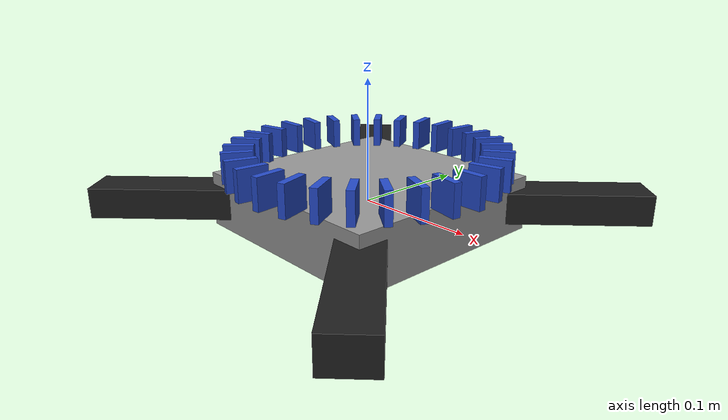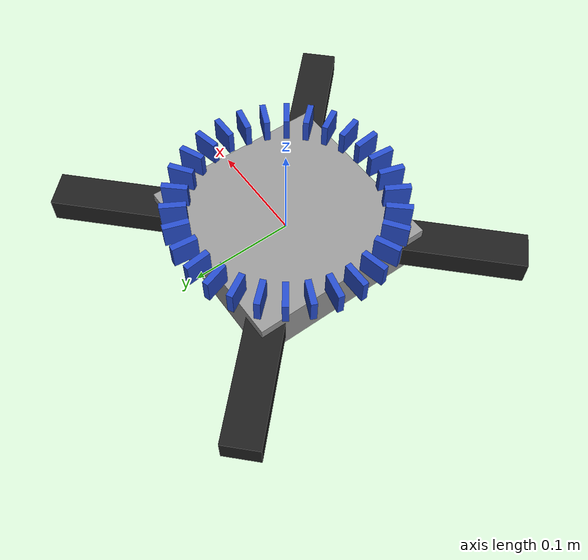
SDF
<?xml version="1.0" ?>

<sdf version="1.5">
  <model name="pendulum_quadcopter_platform">
    <link name="platform_base">
      <pose>0 0 0 0 0 0</pose>
      <inertial>
        <pose>0 0 0 0 0 0</pose>
        <mass>1.1</mass>
        <inertia>
          <ixx>0.018</ixx>
          <iyy>0.018</iyy>
          <izz>0.032</izz>
          <ixy>0</ixy>
          <ixz>0</ixz>
          <iyz>0</iyz>
        </inertia>
      </inertial>

      <collision name="body_collision">
        <pose>0 0 0 0 0 0</pose>
        <geometry>
          <box>
            <size>0.18 0.18 0.045</size>
          </box>
        </geometry>
        <surface>
          <contact>
            <ode>
              <max_vel>100.0</max_vel>
              <min_depth>0.001</min_depth>
            </ode>
          </contact>
          <friction>
            <ode>
              <mu>100000.0</mu>
              <mu2>100000.0</mu2>
            </ode>
          </friction>
        </surface>
      </collision>
      <visual name="body_visual">
        <pose>0 0 0 0 0 0</pose>
        <geometry>
          <box>
            <size>0.18 0.18 0.045</size>
          </box>
        </geometry>
        <material>
          <script>
            <name>Gazebo/Grey</name>
          </script>
        </material>
      </visual>

      <collision name="arm_positive_collision">
        <pose>0 0 0 0 0 0.7853981633974483</pose>
        <geometry>
          <box>
            <size>0.45 0.035 0.025</size>
          </box>
        </geometry>
      </collision>
      <visual name="arm_positive_visual">
        <pose>0 0 0 0 0 0.7853981633974483</pose>
        <geometry>
          <box>
            <size>0.45 0.035 0.025</size>
          </box>
        </geometry>
        <material>
          <script>
            <name>Gazebo/Black</name>
          </script>
        </material>
      </visual>

      <collision name="arm_negative_collision">
        <pose>0 0 0 0 0 -0.7853981633974483</pose>
        <geometry>
          <box>
            <size>0.45 0.035 0.025</size>
          </box>
        </geometry>
      </collision>
      <visual name="arm_negative_visual">
        <pose>0 0 0 0 0 -0.7853981633974483</pose>
        <geometry>
          <box>
            <size>0.45 0.035 0.025</size>
          </box>
        </geometry>
        <material>
          <script>
            <name>Gazebo/Black</name>
          </script>
        </material>
      </visual>

      <collision name="pendulum_cup_collision_0">
        <pose>0.10300000000000001 0.0 0.035 0 0 0.0</pose>
        <geometry>
          <box>
            <size>0.0248081099878474 0.006 0.025</size>
          </box>
        </geometry>
        <surface>
          <contact>
            <ode>
              <max_vel>100.0</max_vel>
              <min_depth>0.001</min_depth>
            </ode>
          </contact>
          <friction>
            <ode>
              <mu>100000.0</mu>
              <mu2>100000.0</mu2>
            </ode>
          </friction>
        </surface>
      </collision>
      <visual name="pendulum_cup_visual_0">
        <pose>0.10300000000000001 0.0 0.035 0 0 0.0</pose>
        <geometry>
          <box>
            <size>0.0248081099878474 0.006 0.025</size>
          </box>
        </geometry>
        <material>
          <script>
            <name>Gazebo/Blue</name>
          </script>
        </material>
      </visual>

      <collision name="pendulum_cup_collision_1">
        <pose>0.10074920287558199 0.02141490415422921 0.035 0 0 0.20943951023931953</pose>
        <geometry>
          <box>
            <size>0.0248081099878474 0.006 0.025</size>
          </box>
        </geometry>
        <surface>
          <contact>
            <ode>
              <max_vel>100.0</max_vel>
              <min_depth>0.001</min_depth>
            </ode>
          </contact>
          <friction>
            <ode>
              <mu>100000.0</mu>
              <mu2>100000.0</mu2>
            </ode>
          </friction>
        </surface>
      </collision>
      <visual name="pendulum_cup_visual_1">
        <pose>0.10074920287558199 0.02141490415422921 0.035 0 0 0.20943951023931953</pose>
        <geometry>
          <box>
            <size>0.0248081099878474 0.006 0.025</size>
          </box>
        </geometry>
        <material>
          <script>
            <name>Gazebo/Blue</name>
          </script>
        </material>
      </visual>

      <collision name="pendulum_cup_collision_2">
        <pose>0.0940951821371879 0.04189387423680742 0.035 0 0 0.41887902047863906</pose>
        <geometry>
          <box>
            <size>0.0248081099878474 0.006 0.025</size>
          </box>
        </geometry>
        <surface>
          <contact>
            <ode>
              <max_vel>100.0</max_vel>
              <min_depth>0.001</min_depth>
            </ode>
          </contact>
          <friction>
            <ode>
              <mu>100000.0</mu>
              <mu2>100000.0</mu2>
            </ode>
          </friction>
        </surface>
      </collision>
      <visual name="pendulum_cup_visual_2">
        <pose>0.0940951821371879 0.04189387423680742 0.035 0 0 0.41887902047863906</pose>
        <geometry>
          <box>
            <size>0.0248081099878474 0.006 0.025</size>
          </box>
        </geometry>
        <material>
          <script>
            <name>Gazebo/Blue</name>
          </script>
        </material>
      </visual>

      <collision name="pendulum_cup_collision_3">
        <pose>0.08332875042061959 0.06054188098612474 0.035 0 0 0.6283185307179586</pose>
        <geometry>
          <box>
            <size>0.0248081099878474 0.006 0.025</size>
          </box>
        </geometry>
        <surface>
          <contact>
            <ode>
              <max_vel>100.0</max_vel>
              <min_depth>0.001</min_depth>
            </ode>
          </contact>
          <friction>
            <ode>
              <mu>100000.0</mu>
              <mu2>100000.0</mu2>
            </ode>
          </friction>
        </surface>
      </collision>
      <visual name="pendulum_cup_visual_3">
        <pose>0.08332875042061959 0.06054188098612474 0.035 0 0 0.6283185307179586</pose>
        <geometry>
          <box>
            <size>0.0248081099878474 0.006 0.025</size>
          </box>
        </geometry>
        <material>
          <script>
            <name>Gazebo/Blue</name>
          </script>
        </material>
      </visual>

      <collision name="pendulum_cup_collision_4">
        <pose>0.06892045245496241 0.0765439170241716 0.035 0 0 0.8377580409572781</pose>
        <geometry>
          <box>
            <size>0.0248081099878474 0.006 0.025</size>
          </box>
        </geometry>
        <surface>
          <contact>
            <ode>
              <max_vel>100.0</max_vel>
              <min_depth>0.001</min_depth>
            </ode>
          </contact>
          <friction>
            <ode>
              <mu>100000.0</mu>
              <mu2>100000.0</mu2>
            </ode>
          </friction>
        </surface>
      </collision>
      <visual name="pendulum_cup_visual_4">
        <pose>0.06892045245496241 0.0765439170241716 0.035 0 0 0.8377580409572781</pose>
        <geometry>
          <box>
            <size>0.0248081099878474 0.006 0.025</size>
          </box>
        </geometry>
        <material>
          <script>
            <name>Gazebo/Blue</name>
          </script>
        </material>
      </visual>

      <collision name="pendulum_cup_collision_5">
        <pose>0.05150000000000002 0.08920061658979718 0.035 0 0 1.0471975511965976</pose>
        <geometry>
          <box>
            <size>0.0248081099878474 0.006 0.025</size>
          </box>
        </geometry>
        <surface>
          <contact>
            <ode>
              <max_vel>100.0</max_vel>
              <min_depth>0.001</min_depth>
            </ode>
          </contact>
          <friction>
            <ode>
              <mu>100000.0</mu>
              <mu2>100000.0</mu2>
            </ode>
          </friction>
        </surface>
      </collision>
      <visual name="pendulum_cup_visual_5">
        <pose>0.05150000000000002 0.08920061658979718 0.035 0 0 1.0471975511965976</pose>
        <geometry>
          <box>
            <size>0.0248081099878474 0.006 0.025</size>
          </box>
        </geometry>
        <material>
          <script>
            <name>Gazebo/Blue</name>
          </script>
        </material>
      </visual>

      <collision name="pendulum_cup_collision_6">
        <pose>0.03182875042061959 0.09795882117840082 0.035 0 0 1.2566370614359172</pose>
        <geometry>
          <box>
            <size>0.0248081099878474 0.006 0.025</size>
          </box>
        </geometry>
        <surface>
          <contact>
            <ode>
              <max_vel>100.0</max_vel>
              <min_depth>0.001</min_depth>
            </ode>
          </contact>
          <friction>
            <ode>
              <mu>100000.0</mu>
              <mu2>100000.0</mu2>
            </ode>
          </friction>
        </surface>
      </collision>
      <visual name="pendulum_cup_visual_6">
        <pose>0.03182875042061959 0.09795882117840082 0.035 0 0 1.2566370614359172</pose>
        <geometry>
          <box>
            <size>0.0248081099878474 0.006 0.025</size>
          </box>
        </geometry>
        <material>
          <script>
            <name>Gazebo/Blue</name>
          </script>
        </material>
      </visual>

      <collision name="pendulum_cup_collision_7">
        <pose>0.010766431716568306 0.10243575522293216 0.035 0 0 1.4660765716752369</pose>
        <geometry>
          <box>
            <size>0.0248081099878474 0.006 0.025</size>
          </box>
        </geometry>
        <surface>
          <contact>
            <ode>
              <max_vel>100.0</max_vel>
              <min_depth>0.001</min_depth>
            </ode>
          </contact>
          <friction>
            <ode>
              <mu>100000.0</mu>
              <mu2>100000.0</mu2>
            </ode>
          </friction>
        </surface>
      </collision>
      <visual name="pendulum_cup_visual_7">
        <pose>0.010766431716568306 0.10243575522293216 0.035 0 0 1.4660765716752369</pose>
        <geometry>
          <box>
            <size>0.0248081099878474 0.006 0.025</size>
          </box>
        </geometry>
        <material>
          <script>
            <name>Gazebo/Blue</name>
          </script>
        </material>
      </visual>

      <collision name="pendulum_cup_collision_8">
        <pose>-0.010766431716568294 0.10243575522293216 0.035 0 0 1.6755160819145563</pose>
        <geometry>
          <box>
            <size>0.0248081099878474 0.006 0.025</size>
          </box>
        </geometry>
        <surface>
          <contact>
            <ode>
              <max_vel>100.0</max_vel>
              <min_depth>0.001</min_depth>
            </ode>
          </contact>
          <friction>
            <ode>
              <mu>100000.0</mu>
              <mu2>100000.0</mu2>
            </ode>
          </friction>
        </surface>
      </collision>
      <visual name="pendulum_cup_visual_8">
        <pose>-0.010766431716568294 0.10243575522293216 0.035 0 0 1.6755160819145563</pose>
        <geometry>
          <box>
            <size>0.0248081099878474 0.006 0.025</size>
          </box>
        </geometry>
        <material>
          <script>
            <name>Gazebo/Blue</name>
          </script>
        </material>
      </visual>

      <collision name="pendulum_cup_collision_9">
        <pose>-0.03182875042061958 0.09795882117840084 0.035 0 0 1.8849555921538759</pose>
        <geometry>
          <box>
            <size>0.0248081099878474 0.006 0.025</size>
          </box>
        </geometry>
        <surface>
          <contact>
            <ode>
              <max_vel>100.0</max_vel>
              <min_depth>0.001</min_depth>
            </ode>
          </contact>
          <friction>
            <ode>
              <mu>100000.0</mu>
              <mu2>100000.0</mu2>
            </ode>
          </friction>
        </surface>
      </collision>
      <visual name="pendulum_cup_visual_9">
        <pose>-0.03182875042061958 0.09795882117840084 0.035 0 0 1.8849555921538759</pose>
        <geometry>
          <box>
            <size>0.0248081099878474 0.006 0.025</size>
          </box>
        </geometry>
        <material>
          <script>
            <name>Gazebo/Blue</name>
          </script>
        </material>
      </visual>

      <collision name="pendulum_cup_collision_10">
        <pose>-0.05149999999999998 0.0892006165897972 0.035 0 0 2.0943951023931953</pose>
        <geometry>
          <box>
            <size>0.0248081099878474 0.006 0.025</size>
          </box>
        </geometry>
        <surface>
          <contact>
            <ode>
              <max_vel>100.0</max_vel>
              <min_depth>0.001</min_depth>
            </ode>
          </contact>
          <friction>
            <ode>
              <mu>100000.0</mu>
              <mu2>100000.0</mu2>
            </ode>
          </friction>
        </surface>
      </collision>
      <visual name="pendulum_cup_visual_10">
        <pose>-0.05149999999999998 0.0892006165897972 0.035 0 0 2.0943951023931953</pose>
        <geometry>
          <box>
            <size>0.0248081099878474 0.006 0.025</size>
          </box>
        </geometry>
        <material>
          <script>
            <name>Gazebo/Blue</name>
          </script>
        </material>
      </visual>

      <collision name="pendulum_cup_collision_11">
        <pose>-0.06892045245496237 0.07654391702417164 0.035 0 0 2.3038346126325147</pose>
        <geometry>
          <box>
            <size>0.0248081099878474 0.006 0.025</size>
          </box>
        </geometry>
        <surface>
          <contact>
            <ode>
              <max_vel>100.0</max_vel>
              <min_depth>0.001</min_depth>
            </ode>
          </contact>
          <friction>
            <ode>
              <mu>100000.0</mu>
              <mu2>100000.0</mu2>
            </ode>
          </friction>
        </surface>
      </collision>
      <visual name="pendulum_cup_visual_11">
        <pose>-0.06892045245496237 0.07654391702417164 0.035 0 0 2.3038346126325147</pose>
        <geometry>
          <box>
            <size>0.0248081099878474 0.006 0.025</size>
          </box>
        </geometry>
        <material>
          <script>
            <name>Gazebo/Blue</name>
          </script>
        </material>
      </visual>

      <collision name="pendulum_cup_collision_12">
        <pose>-0.08332875042061959 0.06054188098612475 0.035 0 0 2.5132741228718345</pose>
        <geometry>
          <box>
            <size>0.0248081099878474 0.006 0.025</size>
          </box>
        </geometry>
        <surface>
          <contact>
            <ode>
              <max_vel>100.0</max_vel>
              <min_depth>0.001</min_depth>
            </ode>
          </contact>
          <friction>
            <ode>
              <mu>100000.0</mu>
              <mu2>100000.0</mu2>
            </ode>
          </friction>
        </surface>
      </collision>
      <visual name="pendulum_cup_visual_12">
        <pose>-0.08332875042061959 0.06054188098612475 0.035 0 0 2.5132741228718345</pose>
        <geometry>
          <box>
            <size>0.0248081099878474 0.006 0.025</size>
          </box>
        </geometry>
        <material>
          <script>
            <name>Gazebo/Blue</name>
          </script>
        </material>
      </visual>

      <collision name="pendulum_cup_collision_13">
        <pose>-0.09409518213718791 0.041893874236807405 0.035 0 0 2.7227136331111543</pose>
        <geometry>
          <box>
            <size>0.0248081099878474 0.006 0.025</size>
          </box>
        </geometry>
        <surface>
          <contact>
            <ode>
              <max_vel>100.0</max_vel>
              <min_depth>0.001</min_depth>
            </ode>
          </contact>
          <friction>
            <ode>
              <mu>100000.0</mu>
              <mu2>100000.0</mu2>
            </ode>
          </friction>
        </surface>
      </collision>
      <visual name="pendulum_cup_visual_13">
        <pose>-0.09409518213718791 0.041893874236807405 0.035 0 0 2.7227136331111543</pose>
        <geometry>
          <box>
            <size>0.0248081099878474 0.006 0.025</size>
          </box>
        </geometry>
        <material>
          <script>
            <name>Gazebo/Blue</name>
          </script>
        </material>
      </visual>

      <collision name="pendulum_cup_collision_14">
        <pose>-0.10074920287558199 0.02141490415422921 0.035 0 0 2.9321531433504737</pose>
        <geometry>
          <box>
            <size>0.0248081099878474 0.006 0.025</size>
          </box>
        </geometry>
        <surface>
          <contact>
            <ode>
              <max_vel>100.0</max_vel>
              <min_depth>0.001</min_depth>
            </ode>
          </contact>
          <friction>
            <ode>
              <mu>100000.0</mu>
              <mu2>100000.0</mu2>
            </ode>
          </friction>
        </surface>
      </collision>
      <visual name="pendulum_cup_visual_14">
        <pose>-0.10074920287558199 0.02141490415422921 0.035 0 0 2.9321531433504737</pose>
        <geometry>
          <box>
            <size>0.0248081099878474 0.006 0.025</size>
          </box>
        </geometry>
        <material>
          <script>
            <name>Gazebo/Blue</name>
          </script>
        </material>
      </visual>

      <collision name="pendulum_cup_collision_15">
        <pose>-0.10300000000000001 5.83550506457742e-17 0.035 0 0 3.1415926535897927</pose>
        <geometry>
          <box>
            <size>0.0248081099878474 0.006 0.025</size>
          </box>
        </geometry>
        <surface>
          <contact>
            <ode>
              <max_vel>100.0</max_vel>
              <min_depth>0.001</min_depth>
            </ode>
          </contact>
          <friction>
            <ode>
              <mu>100000.0</mu>
              <mu2>100000.0</mu2>
            </ode>
          </friction>
        </surface>
      </collision>
      <visual name="pendulum_cup_visual_15">
        <pose>-0.10300000000000001 5.83550506457742e-17 0.035 0 0 3.1415926535897927</pose>
        <geometry>
          <box>
            <size>0.0248081099878474 0.006 0.025</size>
          </box>
        </geometry>
        <material>
          <script>
            <name>Gazebo/Blue</name>
          </script>
        </material>
      </visual>

      <collision name="pendulum_cup_collision_16">
        <pose>-0.10074920287558199 -0.021414904154229187 0.035 0 0 3.3510321638291125</pose>
        <geometry>
          <box>
            <size>0.0248081099878474 0.006 0.025</size>
          </box>
        </geometry>
        <surface>
          <contact>
            <ode>
              <max_vel>100.0</max_vel>
              <min_depth>0.001</min_depth>
            </ode>
          </contact>
          <friction>
            <ode>
              <mu>100000.0</mu>
              <mu2>100000.0</mu2>
            </ode>
          </friction>
        </surface>
      </collision>
      <visual name="pendulum_cup_visual_16">
        <pose>-0.10074920287558199 -0.021414904154229187 0.035 0 0 3.3510321638291125</pose>
        <geometry>
          <box>
            <size>0.0248081099878474 0.006 0.025</size>
          </box>
        </geometry>
        <material>
          <script>
            <name>Gazebo/Blue</name>
          </script>
        </material>
      </visual>

      <collision name="pendulum_cup_collision_17">
        <pose>-0.0940951821371879 -0.041893874236807425 0.035 0 0 3.5604716740684323</pose>
        <geometry>
          <box>
            <size>0.0248081099878474 0.006 0.025</size>
          </box>
        </geometry>
        <surface>
          <contact>
            <ode>
              <max_vel>100.0</max_vel>
              <min_depth>0.001</min_depth>
            </ode>
          </contact>
          <friction>
            <ode>
              <mu>100000.0</mu>
              <mu2>100000.0</mu2>
            </ode>
          </friction>
        </surface>
      </collision>
      <visual name="pendulum_cup_visual_17">
        <pose>-0.0940951821371879 -0.041893874236807425 0.035 0 0 3.5604716740684323</pose>
        <geometry>
          <box>
            <size>0.0248081099878474 0.006 0.025</size>
          </box>
        </geometry>
        <material>
          <script>
            <name>Gazebo/Blue</name>
          </script>
        </material>
      </visual>

      <collision name="pendulum_cup_collision_18">
        <pose>-0.0833287504206196 -0.06054188098612473 0.035 0 0 3.7699111843077517</pose>
        <geometry>
          <box>
            <size>0.0248081099878474 0.006 0.025</size>
          </box>
        </geometry>
        <surface>
          <contact>
            <ode>
              <max_vel>100.0</max_vel>
              <min_depth>0.001</min_depth>
            </ode>
          </contact>
          <friction>
            <ode>
              <mu>100000.0</mu>
              <mu2>100000.0</mu2>
            </ode>
          </friction>
        </surface>
      </collision>
      <visual name="pendulum_cup_visual_18">
        <pose>-0.0833287504206196 -0.06054188098612473 0.035 0 0 3.7699111843077517</pose>
        <geometry>
          <box>
            <size>0.0248081099878474 0.006 0.025</size>
          </box>
        </geometry>
        <material>
          <script>
            <name>Gazebo/Blue</name>
          </script>
        </material>
      </visual>

      <collision name="pendulum_cup_collision_19">
        <pose>-0.06892045245496242 -0.07654391702417158 0.035 0 0 3.979350694547071</pose>
        <geometry>
          <box>
            <size>0.0248081099878474 0.006 0.025</size>
          </box>
        </geometry>
        <surface>
          <contact>
            <ode>
              <max_vel>100.0</max_vel>
              <min_depth>0.001</min_depth>
            </ode>
          </contact>
          <friction>
            <ode>
              <mu>100000.0</mu>
              <mu2>100000.0</mu2>
            </ode>
          </friction>
        </surface>
      </collision>
      <visual name="pendulum_cup_visual_19">
        <pose>-0.06892045245496242 -0.07654391702417158 0.035 0 0 3.979350694547071</pose>
        <geometry>
          <box>
            <size>0.0248081099878474 0.006 0.025</size>
          </box>
        </geometry>
        <material>
          <script>
            <name>Gazebo/Blue</name>
          </script>
        </material>
      </visual>

      <collision name="pendulum_cup_collision_20">
        <pose>-0.05150000000000005 -0.08920061658979717 0.035 0 0 4.1887902047863905</pose>
        <geometry>
          <box>
            <size>0.0248081099878474 0.006 0.025</size>
          </box>
        </geometry>
        <surface>
          <contact>
            <ode>
              <max_vel>100.0</max_vel>
              <min_depth>0.001</min_depth>
            </ode>
          </contact>
          <friction>
            <ode>
              <mu>100000.0</mu>
              <mu2>100000.0</mu2>
            </ode>
          </friction>
        </surface>
      </collision>
      <visual name="pendulum_cup_visual_20">
        <pose>-0.05150000000000005 -0.08920061658979717 0.035 0 0 4.1887902047863905</pose>
        <geometry>
          <box>
            <size>0.0248081099878474 0.006 0.025</size>
          </box>
        </geometry>
        <material>
          <script>
            <name>Gazebo/Blue</name>
          </script>
        </material>
      </visual>

      <collision name="pendulum_cup_collision_21">
        <pose>-0.031828750420619605 -0.09795882117840082 0.035 0 0 4.39822971502571</pose>
        <geometry>
          <box>
            <size>0.0248081099878474 0.006 0.025</size>
          </box>
        </geometry>
        <surface>
          <contact>
            <ode>
              <max_vel>100.0</max_vel>
              <min_depth>0.001</min_depth>
            </ode>
          </contact>
          <friction>
            <ode>
              <mu>100000.0</mu>
              <mu2>100000.0</mu2>
            </ode>
          </friction>
        </surface>
      </collision>
      <visual name="pendulum_cup_visual_21">
        <pose>-0.031828750420619605 -0.09795882117840082 0.035 0 0 4.39822971502571</pose>
        <geometry>
          <box>
            <size>0.0248081099878474 0.006 0.025</size>
          </box>
        </geometry>
        <material>
          <script>
            <name>Gazebo/Blue</name>
          </script>
        </material>
      </visual>

      <collision name="pendulum_cup_collision_22">
        <pose>-0.010766431716568386 -0.10243575522293216 0.035 0 0 4.607669225265029</pose>
        <geometry>
          <box>
            <size>0.0248081099878474 0.006 0.025</size>
          </box>
        </geometry>
        <surface>
          <contact>
            <ode>
              <max_vel>100.0</max_vel>
              <min_depth>0.001</min_depth>
            </ode>
          </contact>
          <friction>
            <ode>
              <mu>100000.0</mu>
              <mu2>100000.0</mu2>
            </ode>
          </friction>
        </surface>
      </collision>
      <visual name="pendulum_cup_visual_22">
        <pose>-0.010766431716568386 -0.10243575522293216 0.035 0 0 4.607669225265029</pose>
        <geometry>
          <box>
            <size>0.0248081099878474 0.006 0.025</size>
          </box>
        </geometry>
        <material>
          <script>
            <name>Gazebo/Blue</name>
          </script>
        </material>
      </visual>

      <collision name="pendulum_cup_collision_23">
        <pose>0.010766431716568258 -0.10243575522293216 0.035 0 0 4.817108735504349</pose>
        <geometry>
          <box>
            <size>0.0248081099878474 0.006 0.025</size>
          </box>
        </geometry>
        <surface>
          <contact>
            <ode>
              <max_vel>100.0</max_vel>
              <min_depth>0.001</min_depth>
            </ode>
          </contact>
          <friction>
            <ode>
              <mu>100000.0</mu>
              <mu2>100000.0</mu2>
            </ode>
          </friction>
        </surface>
      </collision>
      <visual name="pendulum_cup_visual_23">
        <pose>0.010766431716568258 -0.10243575522293216 0.035 0 0 4.817108735504349</pose>
        <geometry>
          <box>
            <size>0.0248081099878474 0.006 0.025</size>
          </box>
        </geometry>
        <material>
          <script>
            <name>Gazebo/Blue</name>
          </script>
        </material>
      </visual>

      <collision name="pendulum_cup_collision_24">
        <pose>0.03182875042061957 -0.09795882117840084 0.035 0 0 5.026548245743669</pose>
        <geometry>
          <box>
            <size>0.0248081099878474 0.006 0.025</size>
          </box>
        </geometry>
        <surface>
          <contact>
            <ode>
              <max_vel>100.0</max_vel>
              <min_depth>0.001</min_depth>
            </ode>
          </contact>
          <friction>
            <ode>
              <mu>100000.0</mu>
              <mu2>100000.0</mu2>
            </ode>
          </friction>
        </surface>
      </collision>
      <visual name="pendulum_cup_visual_24">
        <pose>0.03182875042061957 -0.09795882117840084 0.035 0 0 5.026548245743669</pose>
        <geometry>
          <box>
            <size>0.0248081099878474 0.006 0.025</size>
          </box>
        </geometry>
        <material>
          <script>
            <name>Gazebo/Blue</name>
          </script>
        </material>
      </visual>

      <collision name="pendulum_cup_collision_25">
        <pose>0.05150000000000002 -0.08920061658979718 0.035 0 0 5.235987755982989</pose>
        <geometry>
          <box>
            <size>0.0248081099878474 0.006 0.025</size>
          </box>
        </geometry>
        <surface>
          <contact>
            <ode>
              <max_vel>100.0</max_vel>
              <min_depth>0.001</min_depth>
            </ode>
          </contact>
          <friction>
            <ode>
              <mu>100000.0</mu>
              <mu2>100000.0</mu2>
            </ode>
          </friction>
        </surface>
      </collision>
      <visual name="pendulum_cup_visual_25">
        <pose>0.05150000000000002 -0.08920061658979718 0.035 0 0 5.235987755982989</pose>
        <geometry>
          <box>
            <size>0.0248081099878474 0.006 0.025</size>
          </box>
        </geometry>
        <material>
          <script>
            <name>Gazebo/Blue</name>
          </script>
        </material>
      </visual>

      <collision name="pendulum_cup_collision_26">
        <pose>0.06892045245496242 -0.07654391702417158 0.035 0 0 5.445427266222309</pose>
        <geometry>
          <box>
            <size>0.0248081099878474 0.006 0.025</size>
          </box>
        </geometry>
        <surface>
          <contact>
            <ode>
              <max_vel>100.0</max_vel>
              <min_depth>0.001</min_depth>
            </ode>
          </contact>
          <friction>
            <ode>
              <mu>100000.0</mu>
              <mu2>100000.0</mu2>
            </ode>
          </friction>
        </surface>
      </collision>
      <visual name="pendulum_cup_visual_26">
        <pose>0.06892045245496242 -0.07654391702417158 0.035 0 0 5.445427266222309</pose>
        <geometry>
          <box>
            <size>0.0248081099878474 0.006 0.025</size>
          </box>
        </geometry>
        <material>
          <script>
            <name>Gazebo/Blue</name>
          </script>
        </material>
      </visual>

      <collision name="pendulum_cup_collision_27">
        <pose>0.08332875042061959 -0.06054188098612476 0.035 0 0 5.654866776461628</pose>
        <geometry>
          <box>
            <size>0.0248081099878474 0.006 0.025</size>
          </box>
        </geometry>
        <surface>
          <contact>
            <ode>
              <max_vel>100.0</max_vel>
              <min_depth>0.001</min_depth>
            </ode>
          </contact>
          <friction>
            <ode>
              <mu>100000.0</mu>
              <mu2>100000.0</mu2>
            </ode>
          </friction>
        </surface>
      </collision>
      <visual name="pendulum_cup_visual_27">
        <pose>0.08332875042061959 -0.06054188098612476 0.035 0 0 5.654866776461628</pose>
        <geometry>
          <box>
            <size>0.0248081099878474 0.006 0.025</size>
          </box>
        </geometry>
        <material>
          <script>
            <name>Gazebo/Blue</name>
          </script>
        </material>
      </visual>

      <collision name="pendulum_cup_collision_28">
        <pose>0.09409518213718791 -0.04189387423680742 0.035 0 0 5.8643062867009474</pose>
        <geometry>
          <box>
            <size>0.0248081099878474 0.006 0.025</size>
          </box>
        </geometry>
        <surface>
          <contact>
            <ode>
              <max_vel>100.0</max_vel>
              <min_depth>0.001</min_depth>
            </ode>
          </contact>
          <friction>
            <ode>
              <mu>100000.0</mu>
              <mu2>100000.0</mu2>
            </ode>
          </friction>
        </surface>
      </collision>
      <visual name="pendulum_cup_visual_28">
        <pose>0.09409518213718791 -0.04189387423680742 0.035 0 0 5.8643062867009474</pose>
        <geometry>
          <box>
            <size>0.0248081099878474 0.006 0.025</size>
          </box>
        </geometry>
        <material>
          <script>
            <name>Gazebo/Blue</name>
          </script>
        </material>
      </visual>

      <collision name="pendulum_cup_collision_29">
        <pose>0.10074920287558199 -0.021414904154229177 0.035 0 0 6.073745796940267</pose>
        <geometry>
          <box>
            <size>0.0248081099878474 0.006 0.025</size>
          </box>
        </geometry>
        <surface>
          <contact>
            <ode>
              <max_vel>100.0</max_vel>
              <min_depth>0.001</min_depth>
            </ode>
          </contact>
          <friction>
            <ode>
              <mu>100000.0</mu>
              <mu2>100000.0</mu2>
            </ode>
          </friction>
        </surface>
      </collision>
      <visual name="pendulum_cup_visual_29">
        <pose>0.10074920287558199 -0.021414904154229177 0.035 0 0 6.073745796940267</pose>
        <geometry>
          <box>
            <size>0.0248081099878474 0.006 0.025</size>
          </box>
        </geometry>
        <material>
          <script>
            <name>Gazebo/Blue</name>
          </script>
        </material>
      </visual>

    </link>

    <link name="imu_link">
      <inertial>
        <pose>0 0 0 0 0 0</pose>
        <mass>0.15</mass>
        <inertia>
          <ixx>0.00001</ixx>
          <ixy>0</ixy>
          <ixz>0</ixz>
          <iyy>0.00002</iyy>
          <iyz>0</iyz>
          <izz>0.00002</izz>
        </inertia>
      </inertial>
      <sensor name="imu_sensor" type="imu">
        <pose>0 0 0 3.141593 0 0</pose>
        <always_on>1</always_on>
        <update_rate>1000.0</update_rate>
        <topic>__default_topic__</topic>
      </sensor>
    </link>

    <joint name="imu_joint" type="fixed">
      <parent>platform_base</parent>
      <child>imu_link</child>
    </joint>
  </model>
</sdf>
